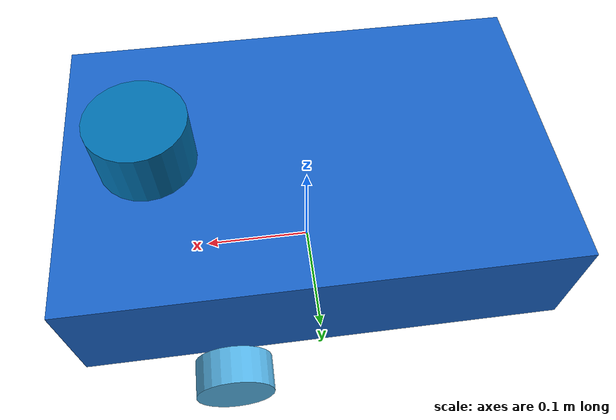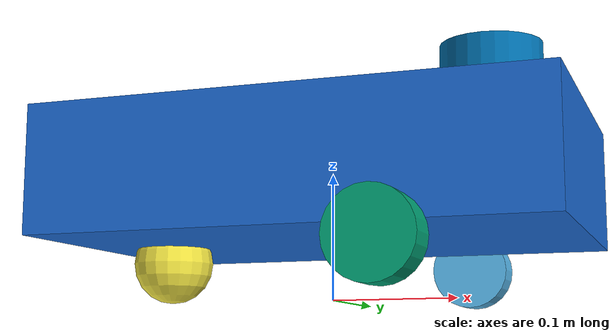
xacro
<?xml version="1.0"?>
<robot xmlns:xacro="http://www.ros.org/wiki/xacro"
       name="lidar_slam_bot">

  <!-- Robot dimensions                                          -->

  <!-- Chassis -->
  <xacro:property name="chassis_length" value="0.40"/>
  <xacro:property name="chassis_width"  value="0.26"/>
  <xacro:property name="chassis_height" value="0.10"/>

  <!-- Drive wheels -->
  <xacro:property name="wheel_radius"     value="0.0325"/>
  <xacro:property name="wheel_width"      value="0.030"/>
  <xacro:property name="wheel_separation" value="0.30"/>
  <xacro:property name="wheel_x"          value="0.08"/>

  <!-- Rear caster -->
  <xacro:property name="caster_x"      value="-0.14"/>
  <xacro:property name="caster_radius" value="0.0325"/>

  <!-- LiDAR -->
  <xacro:property name="lidar_x"      value="0.13"/>
  <xacro:property name="lidar_z"      value="0.170"/>
  <xacro:property name="lidar_radius" value="0.04"/>
  <xacro:property name="lidar_height" value="0.05"/>

  <!-- Visual appearance                                         -->

  <material name="robot_blue">
    <color rgba="0.1 0.4 0.8 1.0"/>
  </material>

  <!-- BASE LINK                                                  -->
  <!-- base_link is located at the center of the drive-wheel      -->
  <!-- axle.                                                      -->
  <!-- Wheel centers: z = 0                                      -->
  <!-- Wheel ground contact: z = -0.0325 m                        -->
  <!-- The chassis is intentionally above the wheel axle.        -->

  <link name="base_link">

    <!-- Chassis visual -->
    <visual>
      <origin xyz="0 0 0.095" rpy="0 0 0"/>
      <geometry>
        <box size="${chassis_length}
                   ${chassis_width}
                   ${chassis_height}"/>
      </geometry>
      <material name="robot_blue"/>
    </visual>

    <!-- Chassis collision -->
    <collision>
      <origin xyz="0 0 0.095" rpy="0 0 0"/>
      <geometry>
        <box size="${chassis_length}
                   ${chassis_width}
                   ${chassis_height}"/>
      </geometry>
    </collision>

    <!-- Chassis inertial -->
    <inertial>
      <origin xyz="0 0 0.095" rpy="0 0 0"/>
      <mass value="5.0"/>

      <inertia
        ixx="0.05"
        ixy="0.0"
        ixz="0.0"
        iyy="0.05"
        iyz="0.0"
        izz="0.05"/>
    </inertial>

  </link>

  <!-- LEFT DRIVE WHEEL                                          -->
  <!-- URDF cylinders have their axis along Z by default.        -->
  <!-- Rotate 90 degrees around X so the axle is along Y.        -->

  <link name="left_wheel_link">

    <visual>
      <origin xyz="0 0 0" rpy="1.5708 0 0"/>
      <geometry>
        <cylinder
          radius="${wheel_radius}"
          length="${wheel_width}"/>
      </geometry>
    </visual>

    <collision>
      <origin xyz="0 0 0" rpy="1.5708 0 0"/>
      <geometry>
        <cylinder
          radius="${wheel_radius}"
          length="${wheel_width}"/>
      </geometry>
    </collision>

    <inertial>
      <origin xyz="0 0 0" rpy="0 0 0"/>
      <mass value="0.25"/>

      <inertia
        ixx="0.0001"
        ixy="0.0"
        ixz="0.0"
        iyy="0.0001"
        iyz="0.0"
        izz="0.0001"/>
    </inertial>

  </link>

  <joint name="left_wheel_joint"
        type="continuous">

    <parent link="base_link"/>
    <child link="left_wheel_link"/>

    <!-- Left wheel center -->
    <origin
      xyz="${wheel_x} ${wheel_separation / 2.0} 0.0325"
      rpy="0 0 0"/>

    <!-- Wheel axle points along Y -->
    <axis xyz="0 1 0"/>

  </joint>

  <!-- RIGHT DRIVE WHEEL                                         -->

  <link name="right_wheel_link">

    <visual>
      <origin xyz="0 0 0" rpy="1.5708 0 0"/>
      <geometry>
        <cylinder
          radius="${wheel_radius}"
          length="${wheel_width}"/>
      </geometry>
    </visual>

    <collision>
      <origin xyz="0 0 0" rpy="1.5708 0 0"/>
      <geometry>
        <cylinder
          radius="${wheel_radius}"
          length="${wheel_width}"/>
      </geometry>
    </collision>

    <inertial>
      <origin xyz="0 0 0" rpy="0 0 0"/>
      <mass value="0.25"/>

      <inertia
        ixx="0.0001"
        ixy="0.0"
        ixz="0.0"
        iyy="0.0001"
        iyz="0.0"
        izz="0.0001"/>
    </inertial>

  </link>

  <joint name="right_wheel_joint"
        type="continuous">

    <parent link="base_link"/>
    <child link="right_wheel_link"/>

    <!-- Right wheel center -->
    <origin
      xyz="${wheel_x} ${-wheel_separation / 2.0} 0.0325"
      rpy="0 0 0"/>

    <!-- Wheel axle points along Y -->
    <axis xyz="0 1 0"/>

  </joint>

  <!-- REAR CASTER                                               -->
  <!-- Same radius as the drive wheels.                           -->
  <!-- Caster center: z = 0                                      -->
  <!-- Caster bottom: z = -0.0325 m                               -->
  <!-- Same ground contact height as drive wheels.                -->

  <link name="caster_link">

    <visual>
      <origin xyz="0 0 0" rpy="0 0 0"/>
      <geometry>
        <sphere radius="${caster_radius}"/>
      </geometry>
    </visual>

    <collision>
      <origin xyz="0 0 0" rpy="0 0 0"/>
      <geometry>
        <sphere radius="${caster_radius}"/>
      </geometry>
    </collision>

    <inertial>
      <origin xyz="0 0 0" rpy="0 0 0"/>
      <mass value="0.20"/>

      <inertia
        ixx="0.00005"
        ixy="0.0"
        ixz="0.0"
        iyy="0.00005"
        iyz="0.0"
        izz="0.00005"/>
    </inertial>

  </link>

  <joint name="caster_joint"
        type="fixed">

    <parent link="base_link"/>
    <child link="caster_link"/>

    <!-- Rear caster center -->
    <origin
      xyz="${caster_x} 0 0.0325"
      rpy="0 0 0"/>

  </joint>

  <!-- LiDAR                                                     -->
  <!-- Chassis:                                                   -->
  <!--   bottom = 0.045 m                                        -->
  <!--   top    = 0.145 m                                        -->
  <!-- LiDAR:                                                     -->
  <!--   bottom = 0.145 m                                        -->
  <!--   center = 0.170 m                                        -->
  <!--   top    = 0.195 m                                        -->

  <link name="lidar_link">

    <visual>
      <origin xyz="0 0 0" rpy="0 0 0"/>
      <geometry>
        <cylinder
          radius="${lidar_radius}"
          length="${lidar_height}"/>
      </geometry>
    </visual>

    <collision>
      <origin xyz="0 0 0" rpy="0 0 0"/>
      <geometry>
        <cylinder
          radius="${lidar_radius}"
          length="${lidar_height}"/>
      </geometry>
    </collision>

    <inertial>
      <origin xyz="0 0 0" rpy="0 0 0"/>
      <mass value="0.15"/>

      <inertia
        ixx="0.0001"
        ixy="0.0"
        ixz="0.0"
        iyy="0.0001"
        iyz="0.0"
        izz="0.0001"/>
    </inertial>

  </link>

  <joint name="lidar_joint"
        type="fixed">

    <parent link="base_link"/>
    <child link="lidar_link"/>

    <!-- LiDAR center -->
    <origin
      xyz="${lidar_x} 0 ${lidar_z}"
      rpy="0 0 0"/>

  </joint>

  <gazebo>

    <plugin
      filename="gz-sim-joint-state-publisher-system"
      name="gz::sim::systems::JointStatePublisher"/>

    <plugin
      filename="gz-sim-diff-drive-system"
      name="gz::sim::systems::DiffDrive">

      <left_joint>left_wheel_joint</left_joint>
      <right_joint>right_wheel_joint</right_joint>

      <wheel_separation>${wheel_separation}</wheel_separation>
      <wheel_radius>${wheel_radius}</wheel_radius>

      <topic>/cmd_vel</topic>

      <frame_id>odom</frame_id>
      <child_frame_id>base_link</child_frame_id>

    </plugin>
  </gazebo>

</robot>
